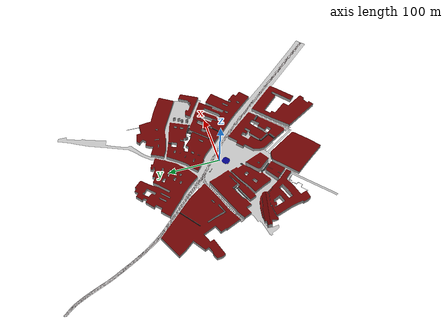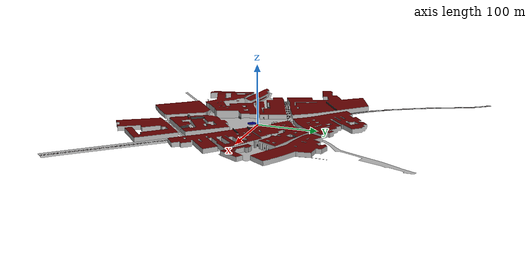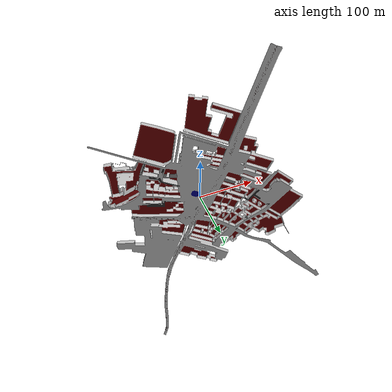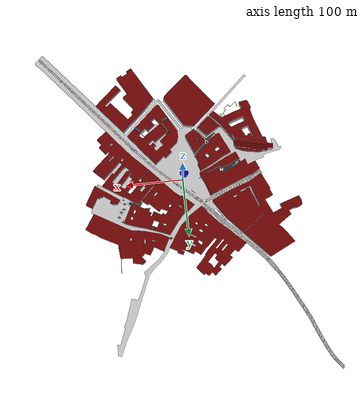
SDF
<?xml version="1.0" ?>
<sdf version="1.6">
  <model name="city_main_square">
    <static>true</static>
    <link name="link">
     <collision name="collision">
        <geometry>
          <mesh>
            <uri>model://city_main_square/meshes/model.dae</uri>
          </mesh>
        </geometry>
      </collision>
      <visual name="visual">
        <geometry>
          <mesh>
            <uri>model://city_main_square/meshes/model.dae</uri>
          </mesh>
        </geometry>
      </visual>
    </link>
  </model>
</sdf>
